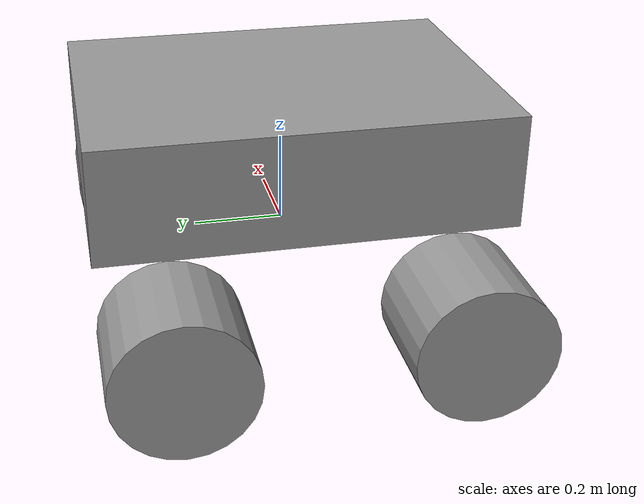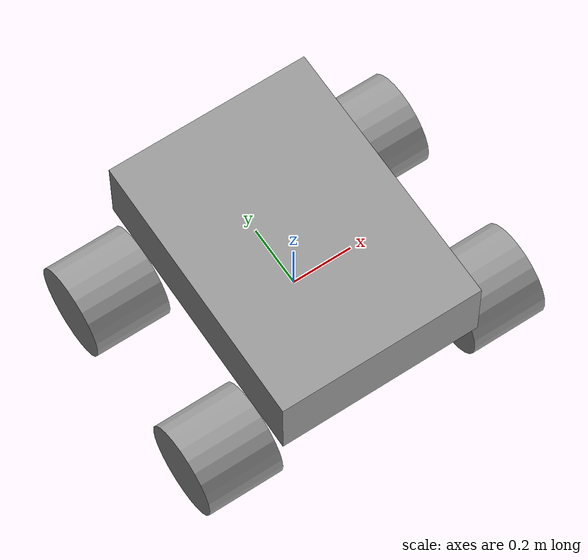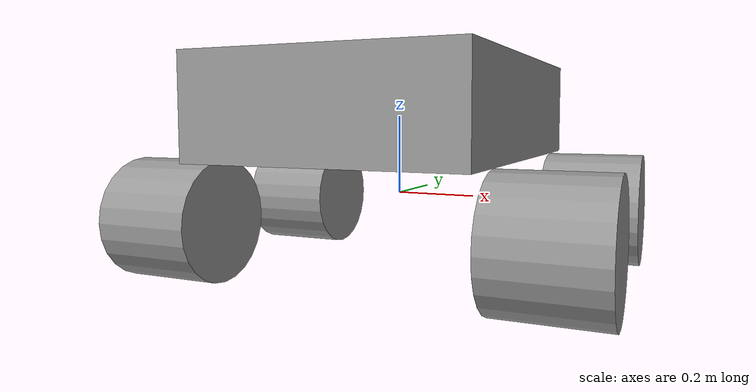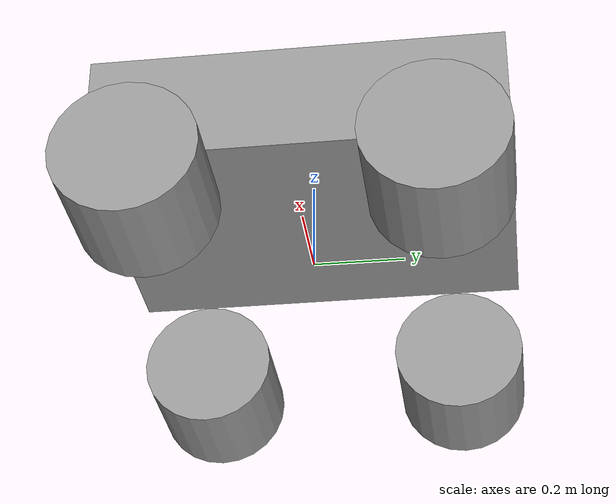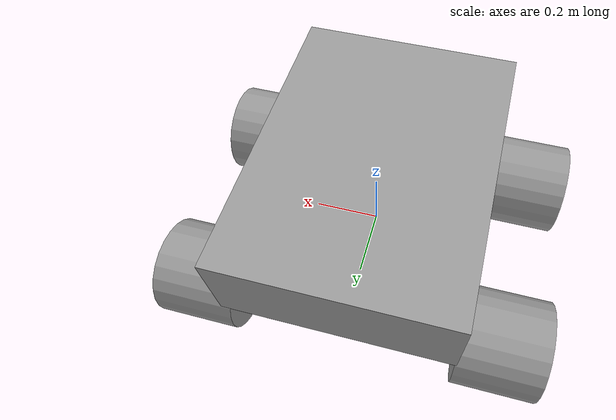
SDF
<?xml version='1.0'?>
<sdf version='1.6'>
  <model name='rover_real_model'>
    <link name='link_1'>

      <pose frame=''>0 0 0.22001 0 -0 0</pose>
      <inertial>
        <mass>50</mass>
        <inertia>
          <ixx>5</ixx>
          <ixy>5</ixy>
          <ixz>5</ixz>
          <iyy>5</iyy>
          <iyz>5</iyz>
          <izz>5</izz>
        </inertia>
        <pose frame=''>0 0 0 0 -0 0</pose>
      </inertial>
      <gravity>1</gravity>
      <self_collide>0</self_collide>
      <kinematic>0</kinematic>
      <visual name='visual'>
        <pose frame=''>0 0 0 0 -0 0</pose>
        <geometry>
          <box>
            <size>0.67 0.9 0.25</size>
          </box>
        </geometry>
        <material>
          <lighting>1</lighting>
          <script>
            <uri>file://media/materials/scripts/gazebo.material</uri>
            <name>Gazebo/Grey</name>
          </script>
          <ambient>0.3 0.3 0.3 1</ambient>
          <diffuse>0.7 0.7 0.7 1</diffuse>
          <specular>0.01 0.01 0.01 1</specular>
          <emissive>0 0 0 1</emissive>
          <shader type='vertex'>
            <normal_map>__default__</normal_map>
          </shader>
        </material>
        <cast_shadows>1</cast_shadows>
        <transparency>0</transparency>
      </visual>
      <collision name='collision'>
        <laser_retro>0</laser_retro>
        <max_contacts>10</max_contacts>
        <pose frame=''>0 0 0 0 -0 0</pose>
        <geometry>
          <box>
            <size>0.67 0.9 0.25</size>
          </box>
        </geometry>
        <surface>
          <friction>
            <ode>
              <mu>1</mu>
              <mu2>1</mu2>
              <fdir1>0 0 0</fdir1>
              <slip1>0</slip1>
              <slip2>0</slip2>
            </ode>
            <torsional>
              <coefficient>1</coefficient>
              <patch_radius>0</patch_radius>
              <surface_radius>0</surface_radius>
              <use_patch_radius>1</use_patch_radius>
              <ode>
                <slip>0</slip>
              </ode>
            </torsional>
          </friction>
          <bounce>
            <restitution_coefficient>0</restitution_coefficient>
            <threshold>1e+06</threshold>
          </bounce>
          <contact>
            <collide_without_contact>0</collide_without_contact>
            <collide_without_contact_bitmask>1</collide_without_contact_bitmask>
            <collide_bitmask>1</collide_bitmask>
            <ode>
              <soft_cfm>0</soft_cfm>
              <soft_erp>0.2</soft_erp>
              <kp>1e+13</kp>
              <kd>1</kd>
              <max_vel>0.01</max_vel>
              <min_depth>0</min_depth>
            </ode>
            <bullet>
              <split_impulse>1</split_impulse>
              <split_impulse_penetration_threshold>-0.01</split_impulse_penetration_threshold>
              <soft_cfm>0</soft_cfm>
              <soft_erp>0.2</soft_erp>
              <kp>1e+13</kp>
              <kd>1</kd>
            </bullet>
          </contact>
        </surface>
      </collision>

      <sensor type="ray" name="leddar">
                <pose> 0 -0.45 0 0 0 -1.5707</pose>
                <always_on>true</always_on>
                <visualize>true</visualize>
                <update_rate>30</update_rate>
                <ray>
                    <noise>
                        <type>gaussian</type>
                        <mean>0.0</mean>
                        <stddev>0.1</stddev>
                    </noise>
                    <scan>
                        <horizontal>
                            <samples>16</samples>
                            <resolution>1</resolution>
                            <min_angle>-0.3926991</min_angle>
                            <max_angle>0.3926991</max_angle>
                        </horizontal>
                    </scan>
                    <range>
                        <min>0.05</min>
                        <max>50</max>
                        <resolution>0.05</resolution>
                    </range>
                </ray>
                <plugin name = "leddar_plugin" filename ="/libleddar_plugin.so"/>
            </sensor>
    </link>
    <link name='link_2'>
      <pose frame=''>0.460014 -0.3 -0.055002 0 1.5707 0</pose>
      <inertial>
        <mass>2</mass>
        <inertia>
          <ixx>5</ixx>
          <ixy>5</ixy>
          <ixz>5</ixz>
          <iyy>5</iyy>
          <iyz>5</iyz>
          <izz>5</izz>
        </inertia>
        <pose frame=''>0 0 0 0 -0 0</pose>
      </inertial>
      <gravity>1</gravity>
      <self_collide>0</self_collide>
      <kinematic>0</kinematic>
      <visual name='visual'>
        <pose frame=''>0 0 0 0 -0 0</pose>
        <geometry>
          <cylinder>
            <radius>0.15</radius>
            <length>0.25</length>
          </cylinder>
        </geometry>
        <material>
          <lighting>1</lighting>
          <script>
            <uri>file://media/materials/scripts/gazebo.material</uri>
            <name>Gazebo/Grey</name>
          </script>
          <ambient>0.3 0.3 0.3 1</ambient>
          <diffuse>0.7 0.7 0.7 1</diffuse>
          <specular>0.01 0.01 0.01 1</specular>
          <emissive>0 0 0 1</emissive>
          <shader type='vertex'>
            <normal_map>__default__</normal_map>
          </shader>
        </material>
        <cast_shadows>1</cast_shadows>
        <transparency>0</transparency>
      </visual>
      <collision name='collision'>
        <laser_retro>0</laser_retro>
        <max_contacts>10</max_contacts>
        <pose frame=''>0 0 0 0 -0 0</pose>
        <geometry>
          <cylinder>
            <radius>0.15</radius>
            <length>0.25</length>
          </cylinder>
        </geometry>
        <surface>
          <friction>
            <ode>
              <mu>1</mu>
              <mu2>1</mu2>
              <fdir1>0 0 0</fdir1>
              <slip1>0</slip1>
              <slip2>0</slip2>
            </ode>
            <torsional>
              <coefficient>1</coefficient>
              <patch_radius>0</patch_radius>
              <surface_radius>0</surface_radius>
              <use_patch_radius>1</use_patch_radius>
              <ode>
                <slip>0</slip>
              </ode>
            </torsional>
          </friction>
          <bounce>
            <restitution_coefficient>0</restitution_coefficient>
            <threshold>1e+06</threshold>
          </bounce>
          <contact>
            <collide_without_contact>0</collide_without_contact>
            <collide_without_contact_bitmask>1</collide_without_contact_bitmask>
            <collide_bitmask>1</collide_bitmask>
            <ode>
              <soft_cfm>0</soft_cfm>
              <soft_erp>0.2</soft_erp>
              <kp>1e+13</kp>
              <kd>1</kd>
              <max_vel>0.01</max_vel>
              <min_depth>0</min_depth>
            </ode>
            <bullet>
              <split_impulse>1</split_impulse>
              <split_impulse_penetration_threshold>-0.01</split_impulse_penetration_threshold>
              <soft_cfm>0</soft_cfm>
              <soft_erp>0.2</soft_erp>
              <kp>1e+13</kp>
              <kd>1</kd>
            </bullet>
          </contact>
        </surface>
      </collision>
    </link>
    <link name='link_2_clone'>
      <pose frame=''>0.460014 0.3 -0.055002 0 1.5707 0</pose>
      <inertial>
        <mass>2</mass>
        <inertia>
          <ixx>5</ixx>
          <ixy>5</ixy>
          <ixz>5</ixz>
          <iyy>5</iyy>
          <iyz>5</iyz>
          <izz>5</izz>
        </inertia>
        <pose frame=''>0 0 0 0 -0 0</pose>
      </inertial>
      <self_collide>0</self_collide>
      <kinematic>0</kinematic>
      <visual name='visual'>
        <pose frame=''>0 0 0 0 -0 0</pose>
        <geometry>
          <cylinder>
            <radius>0.15</radius>
            <length>0.25</length>
          </cylinder>
        </geometry>
        <material>
          <lighting>1</lighting>
          <script>
            <uri>file://media/materials/scripts/gazebo.material</uri>
            <name>Gazebo/Grey</name>
          </script>
          <ambient>0.3 0.3 0.3 1</ambient>
          <diffuse>0.7 0.7 0.7 1</diffuse>
          <specular>0.01 0.01 0.01 1</specular>
          <emissive>0 0 0 1</emissive>
          <shader type='vertex'>
            <normal_map>__default__</normal_map>
          </shader>
        </material>
        <cast_shadows>1</cast_shadows>
        <transparency>0</transparency>
      </visual>
      <collision name='collision'>
        <laser_retro>0</laser_retro>
        <max_contacts>10</max_contacts>
        <pose frame=''>0 0 0 0 -0 0</pose>
        <geometry>
          <cylinder>
            <radius>0.15</radius>
            <length>0.25</length>
          </cylinder>
        </geometry>
        <surface>
          <friction>
            <ode>
              <mu>1</mu>
              <mu2>1</mu2>
              <fdir1>0 0 0</fdir1>
              <slip1>0</slip1>
              <slip2>0</slip2>
            </ode>
            <torsional>
              <coefficient>1</coefficient>
              <patch_radius>0</patch_radius>
              <surface_radius>0</surface_radius>
              <use_patch_radius>1</use_patch_radius>
              <ode>
                <slip>0</slip>
              </ode>
            </torsional>
          </friction>
          <bounce>
            <restitution_coefficient>0</restitution_coefficient>
            <threshold>1e+06</threshold>
          </bounce>
          <contact>
            <collide_without_contact>0</collide_without_contact>
            <collide_without_contact_bitmask>1</collide_without_contact_bitmask>
            <collide_bitmask>1</collide_bitmask>
            <ode>
              <soft_cfm>0</soft_cfm>
              <soft_erp>0.2</soft_erp>
              <kp>1e+13</kp>
              <kd>1</kd>
              <max_vel>0.01</max_vel>
              <min_depth>0</min_depth>
            </ode>
            <bullet>
              <split_impulse>1</split_impulse>
              <split_impulse_penetration_threshold>-0.01</split_impulse_penetration_threshold>
              <soft_cfm>0</soft_cfm>
              <soft_erp>0.2</soft_erp>
              <kp>1e+13</kp>
              <kd>1</kd>
            </bullet>
          </contact>
        </surface>
      </collision>
    </link>
    <link name='link_2_clone_0'>
      <pose frame=''>-0.460014 0.3 -0.055002 0 1.5707 0</pose>
      <inertial>
        <mass>2</mass>
        <inertia>
          <ixx>5</ixx>
          <ixy>5</ixy>
          <ixz>5</ixz>
          <iyy>5</iyy>
          <iyz>5</iyz>
          <izz>5</izz>
        </inertia>
        <pose frame=''>0 0 0 0 -0 0</pose>
      </inertial>
      <self_collide>0</self_collide>
      <kinematic>0</kinematic>
      <visual name='visual'>
        <pose frame=''>0 0 0 0 -0 0</pose>
        <geometry>
          <cylinder>
            <radius>0.15</radius>
            <length>0.25</length>
          </cylinder>
        </geometry>
        <material>
          <lighting>1</lighting>
          <script>
            <uri>file://media/materials/scripts/gazebo.material</uri>
            <name>Gazebo/Grey</name>
          </script>
          <ambient>0.3 0.3 0.3 1</ambient>
          <diffuse>0.7 0.7 0.7 1</diffuse>
          <specular>0.01 0.01 0.01 1</specular>
          <emissive>0 0 0 1</emissive>
          <shader type='vertex'>
            <normal_map>__default__</normal_map>
          </shader>
        </material>
        <cast_shadows>1</cast_shadows>
        <transparency>0</transparency>
      </visual>
      <collision name='collision'>
        <laser_retro>0</laser_retro>
        <max_contacts>10</max_contacts>
        <pose frame=''>0 0 0 0 -0 0</pose>
        <geometry>
          <cylinder>
            <radius>0.15</radius>
            <length>0.25</length>
          </cylinder>
        </geometry>
        <surface>
          <friction>
            <ode>
              <mu>1</mu>
              <mu2>1</mu2>
              <fdir1>0 0 0</fdir1>
              <slip1>0</slip1>
              <slip2>0</slip2>
            </ode>
            <torsional>
              <coefficient>1</coefficient>
              <patch_radius>0</patch_radius>
              <surface_radius>0</surface_radius>
              <use_patch_radius>1</use_patch_radius>
              <ode>
                <slip>0</slip>
              </ode>
            </torsional>
          </friction>
          <bounce>
            <restitution_coefficient>0</restitution_coefficient>
            <threshold>1e+06</threshold>
          </bounce>
          <contact>
            <collide_without_contact>0</collide_without_contact>
            <collide_without_contact_bitmask>1</collide_without_contact_bitmask>
            <collide_bitmask>1</collide_bitmask>
            <ode>
              <soft_cfm>0</soft_cfm>
              <soft_erp>0.2</soft_erp>
              <kp>1e+13</kp>
              <kd>1</kd>
              <max_vel>0.01</max_vel>
              <min_depth>0</min_depth>
            </ode>
            <bullet>
              <split_impulse>1</split_impulse>
              <split_impulse_penetration_threshold>-0.01</split_impulse_penetration_threshold>
              <soft_cfm>0</soft_cfm>
              <soft_erp>0.2</soft_erp>
              <kp>1e+13</kp>
              <kd>1</kd>
            </bullet>
          </contact>
        </surface>
      </collision>
    </link>
    <link name='link_2_clone_1'>
      <pose frame=''>-0.460014 -0.3 -0.055002 0 1.5707 0</pose>
      <inertial>
        <mass>2</mass>
        <inertia>
          <ixx>5</ixx>
          <ixy>5</ixy>
          <ixz>5</ixz>
          <iyy>5</iyy>
          <iyz>5</iyz>
          <izz>5</izz>
        </inertia>
        <pose frame=''>0 0 0 0 -0 0</pose>
      </inertial>
      <self_collide>0</self_collide>
      <kinematic>0</kinematic>
      <visual name='visual'>
        <pose frame=''>0 0 0 0 -0 0</pose>
        <geometry>
          <cylinder>
            <radius>0.15</radius>
            <length>0.25</length>
          </cylinder>
        </geometry>
        <material>
          <lighting>1</lighting>
          <script>
            <uri>file://media/materials/scripts/gazebo.material</uri>
            <name>Gazebo/Grey</name>
          </script>
          <ambient>0.3 0.3 0.3 1</ambient>
          <diffuse>0.7 0.7 0.7 1</diffuse>
          <specular>0.01 0.01 0.01 1</specular>
          <emissive>0 0 0 1</emissive>
          <shader type='vertex'>
            <normal_map>__default__</normal_map>
          </shader>
        </material>
        <cast_shadows>1</cast_shadows>
        <transparency>0</transparency>
      </visual>
      <collision name='collision'>
        <laser_retro>0</laser_retro>
        <max_contacts>10</max_contacts>
        <pose frame=''>0 0 0 0 -0 0</pose>
        <geometry>
          <cylinder>
            <radius>0.15</radius>
            <length>0.25</length>
          </cylinder>
        </geometry>
        <surface>
          <friction>
            <ode>
              <mu>1</mu>
              <mu2>1</mu2>
              <fdir1>0 0 0</fdir1>
              <slip1>0</slip1>
              <slip2>0</slip2>
            </ode>
            <torsional>
              <coefficient>1</coefficient>
              <patch_radius>0</patch_radius>
              <surface_radius>0</surface_radius>
              <use_patch_radius>1</use_patch_radius>
              <ode>
                <slip>0</slip>
              </ode>
            </torsional>
          </friction>
          <bounce>
            <restitution_coefficient>0</restitution_coefficient>
            <threshold>1e+06</threshold>
          </bounce>
          <contact>
            <collide_without_contact>0</collide_without_contact>
            <collide_without_contact_bitmask>1</collide_without_contact_bitmask>
            <collide_bitmask>1</collide_bitmask>
            <ode>
              <soft_cfm>0</soft_cfm>
              <soft_erp>0.2</soft_erp>
              <kp>1e+13</kp>
              <kd>1</kd>
              <max_vel>0.01</max_vel>
              <min_depth>0</min_depth>
            </ode>
            <bullet>
              <split_impulse>1</split_impulse>
              <split_impulse_penetration_threshold>-0.01</split_impulse_penetration_threshold>
              <soft_cfm>0</soft_cfm>
              <soft_erp>0.2</soft_erp>
              <kp>1e+13</kp>
              <kd>1</kd>
            </bullet>
          </contact>
        </surface>
      </collision>
    </link>
    <joint name='link_1_JOINT_0' type='revolute'>
      <parent>link_1</parent>
      <child>link_2_clone</child>
      <pose frame=''>0 0 0 0 -0 0</pose>
      <axis>
        <xyz>0 0 1</xyz>
        <use_parent_model_frame>0</use_parent_model_frame>
        <limit>
          <lower>-1.79769e+308</lower>
          <upper>1.79769e+308</upper>
          <effort>-1</effort>
          <velocity>-1</velocity>
        </limit>
        <dynamics>
          <spring_reference>0</spring_reference>
          <spring_stiffness>0</spring_stiffness>
          <damping>0</damping>
        </dynamics>
      </axis>
      <physics>
        <ode>
          <limit>
            <cfm>0</cfm>
            <erp>0.2</erp>
          </limit>
          <suspension>
            <cfm>0</cfm>
            <erp>0.2</erp>
          </suspension>
        </ode>
      </physics>
    </joint>
    <joint name='link_1_JOINT_1' type='revolute'>
      <parent>link_1</parent>
      <child>link_2</child>
      <pose frame=''>0 0 0 0 -0 0</pose>
      <axis>
        <xyz>0 0 1</xyz>
        <use_parent_model_frame>0</use_parent_model_frame>
        <limit>
          <lower>-1.79769e+308</lower>
          <upper>1.79769e+308</upper>
          <effort>-1</effort>
          <velocity>-1</velocity>
        </limit>
        <dynamics>
          <spring_reference>0</spring_reference>
          <spring_stiffness>0</spring_stiffness>
          <damping>0</damping>
        </dynamics>
      </axis>
      <physics>
        <ode>
          <limit>
            <cfm>0</cfm>
            <erp>0.2</erp>
          </limit>
          <suspension>
            <cfm>0</cfm>
            <erp>0.2</erp>
          </suspension>
        </ode>
      </physics>
    </joint>
    <joint name='link_1_JOINT_2' type='revolute'>
      <parent>link_1</parent>
      <child>link_2_clone_0</child>
      <pose frame=''>0 0 0 0 -0 0</pose>
      <axis>
        <xyz>0 0 1</xyz>
        <use_parent_model_frame>0</use_parent_model_frame>
        <limit>
          <lower>-1.79769e+308</lower>
          <upper>1.79769e+308</upper>
          <effort>-1</effort>
          <velocity>-1</velocity>
        </limit>
        <dynamics>
          <spring_reference>0</spring_reference>
          <spring_stiffness>0</spring_stiffness>
          <damping>0</damping>
        </dynamics>
      </axis>
      <physics>
        <ode>
          <limit>
            <cfm>0</cfm>
            <erp>0.2</erp>
          </limit>
          <suspension>
            <cfm>0</cfm>
            <erp>0.2</erp>
          </suspension>
        </ode>
      </physics>
    </joint>
    <joint name='link_1_JOINT_3' type='revolute'>
      <parent>link_1</parent>
      <child>link_2_clone_1</child>
      <pose frame=''>0 0 0 0 -0 0</pose>
      <axis>
        <xyz>0 0 1</xyz>
        <use_parent_model_frame>0</use_parent_model_frame>
        <limit>
          <lower>-1.79769e+308</lower>
          <upper>1.79769e+308</upper>
          <effort>-1</effort>
          <velocity>-1</velocity>
        </limit>
        <dynamics>
          <spring_reference>0</spring_reference>
          <spring_stiffness>0</spring_stiffness>
          <damping>0</damping>
        </dynamics>
      </axis>
      <physics>
        <ode>
          <limit>
            <cfm>0</cfm>
            <erp>0.2</erp>
          </limit>
          <suspension>
            <cfm>0</cfm>
            <erp>0.2</erp>
          </suspension>
        </ode>
      </physics>
    </joint>
    <static>0</static>
    <allow_auto_disable>1</allow_auto_disable>
    <plugin name="rover_plugin" filename="/librover_plugin.so"></plugin>
    <plugin name="rover_gps_plugin" filename="/libhector_gazebo_ros_gps.so">
      <frameId>map</frameId></plugin>
    <plugin name="rover_gps_plugin" filename="/libhector_gazebo_ros_magnetic.so">
      <frameId>rover</frameId></plugin>
    <plugin name="rover_imu_plugin" filename="/libhector_gazebo_ros_imu.so">
      <frameID>rover</frameID></plugin>

  </model>
</sdf>
